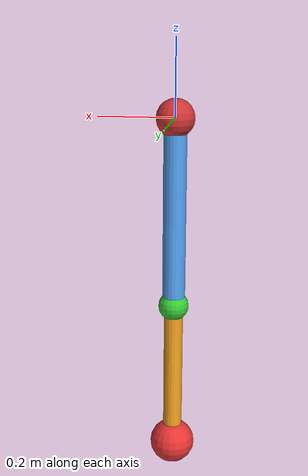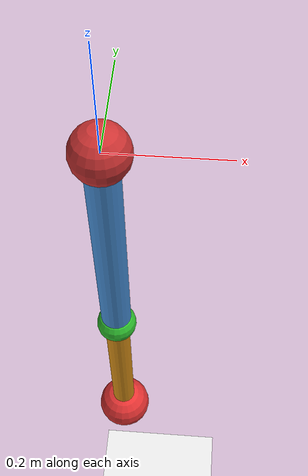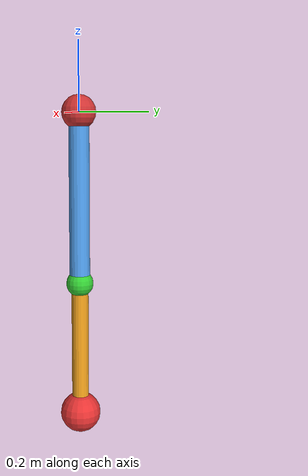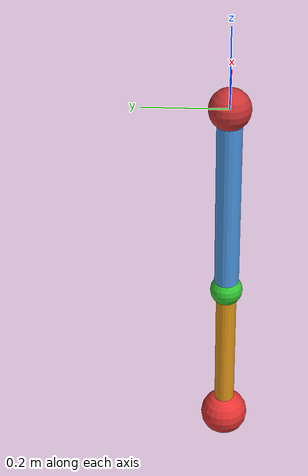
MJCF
<mujoco model="double_pendulum">
  <compiler angle="radian" coordinate="local"/>

  <option gravity="0 0 -9.81" timestep="0.001">
    <flag contact="disable"/>
  </option>

  <default>
    <joint damping="0.02"/>
    <geom rgba="0.3 0.6 0.9 1.0"/>
  </default>

  <visual>
    <headlight ambient="0.3 0.3 0.3"/>
  </visual>

  <worldbody>
    <light pos="0 -1 3" dir="0 0.2 -1"/>
    <geom type="plane" size="2 2 0.01" rgba="0.9 0.9 0.9 1" pos="0 0 -1.8"/>

    <!-- Pivot point -->
    <geom type="sphere" size="0.05" rgba="0.8 0.2 0.2 1"/>

    <!-- First pendulum link -->
    <body name="link1" pos="0 0 0">
      <joint name="joint1" type="hinge" axis="0 1 0"/>
      <geom name="link1_geom" type="capsule" size="0.03" fromto="0 0 0 0 0 -0.5" mass="1.0"/>

      <!-- Connection point visual -->
      <geom type="sphere" size="0.04" pos="0 0 -0.5" rgba="0.2 0.8 0.2 1"/>

      <!-- Second pendulum link (child of first) -->
      <body name="link2" pos="0 0 -0.5">
        <joint name="joint2" type="hinge" axis="0 1 0"/>
        <geom name="link2_geom" type="capsule" size="0.025" fromto="0 0 0 0 0 -0.4" mass="0.8"
              rgba="0.9 0.6 0.1 1"/>

        <!-- Tip mass -->
        <geom name="tip" type="sphere" size="0.06" pos="0 0 -0.4" mass="1.5"
              rgba="0.9 0.2 0.2 1"/>
      </body>
    </body>
  </worldbody>

  <actuator>
    <motor name="motor1" joint="joint1" gear="1" ctrllimited="true" ctrlrange="-5 5"/>
    <motor name="motor2" joint="joint2" gear="1" ctrllimited="true" ctrlrange="-3 3"/>
  </actuator>

  <sensor>
    <jointpos name="joint1_pos" joint="joint1"/>
    <jointvel name="joint1_vel" joint="joint1"/>
    <jointpos name="joint2_pos" joint="joint2"/>
    <jointvel name="joint2_vel" joint="joint2"/>
  </sensor>
</mujoco>
